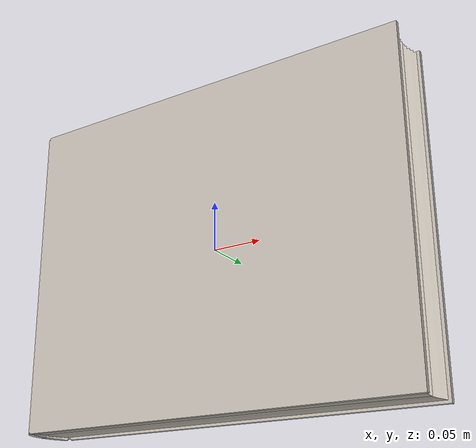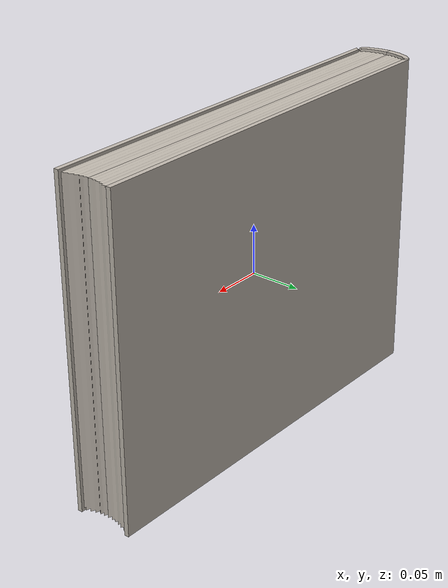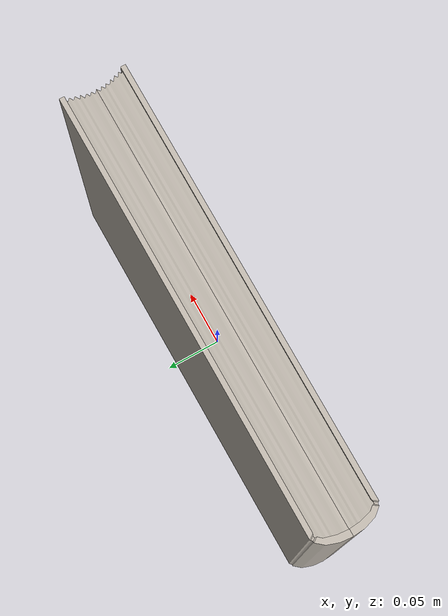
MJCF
<mujoco model="Book_1">
  <compiler angle="radian" />
  <default>
    <default class="/">
      <default class="__VISUAL_MJT__">
        <geom contype="0" conaffinity="0" />
      </default>
      <default class="__STRUCTURAL_MJT__">
        <geom contype="8" conaffinity="15" group="4" friction="0.9 0.9 0.001" solref="0.025" solimp="0.998 0.998" />
      </default>
      <default class="__DYNAMIC_MJT__">
        <geom conaffinity="15" group="4" friction="0.9 0.9 0.001" solref="0.025" solimp="0.998 0.998" />
      </default>
    </default>
  </default>
  <asset>
    <texture type="2d" name="Book_Pages_1_Mat" file="assets/Book_Pages_AlbedoTransparency.png" />
    <texture type="2d" name="Book_Text_Mat" file="assets/Book_Text_AlbedoTransparency.png" />
    <texture type="2d" name="Book_Cover_Mat" file="assets/Book_Cover_AlbedoTransparency.png" />
    <material name="material_Book_Pages_1_Mat" class="/" texture="Book_Pages_1_Mat" />
    <material name="material_Book_Text_Mat" class="/" texture="Book_Text_Mat" />
    <material name="material_Book_Cover_Mat" class="/" texture="Book_Cover_Mat" />
    <mesh name="Book_1_book_1_0" class="/" content_type="model/obj" file="assets/Book_1_book_1/Book_1_book_1_0.obj" />
    <mesh name="Book_1_book_1_1" class="/" content_type="model/obj" file="assets/Book_1_book_1/Book_1_book_1_1.obj" />
    <mesh name="Book_1_book_1_2" class="/" content_type="model/obj" file="assets/Book_1_book_1/Book_1_book_1_2.obj" />
    <mesh name="Book_1_book_front_1_0" class="/" content_type="model/obj" file="assets/Book_1_book_front_1/Book_1_book_front_1_0.obj" />
    <mesh name="Book_1_book_front_1_1" class="/" content_type="model/obj" file="assets/Book_1_book_front_1/Book_1_book_front_1_1.obj" />
    <mesh name="Book_1_book_front_1_2" class="/" content_type="model/obj" file="assets/Book_1_book_front_1/Book_1_book_front_1_2.obj" />
  </asset>
  <worldbody>
    <body name="Book_1">
      <joint name="Book_1_free" class="/" type="free" limited="false" actuatorfrclimited="false" damping="0.1" />
      <body name="Book_1_book_1" pos="-0.00157 -0.03107 0">
        <geom name="Book_1_book_1_0" class="__VISUAL_MJT__" type="mesh" material="material_Book_Pages_1_Mat" mesh="Book_1_book_1_0" mass="0"/>
        <geom name="Book_1_book_1_1" class="__VISUAL_MJT__" type="mesh" material="material_Book_Text_Mat" mesh="Book_1_book_1_1" mass="0"/>
        <geom name="Book_1_book_1_2" class="__VISUAL_MJT__" type="mesh" material="material_Book_Cover_Mat" mesh="Book_1_book_1_2" mass="0"/>
        <geom name="Book_1_book_1_PrimitiveCollider_0" class="__DYNAMIC_MJT__" size="0.210994 0.0162689 0.164428" pos="-0.00344684 0.0168215 -2.46537e-09" quat="0 -3.57628e-07 0 1" type="box" rgba="0 1 0 1" density="54.093"/>
        <geom name="Book_1_book_1_PrimitiveCollider_1" class="__DYNAMIC_MJT__" size="0.0876539 0.00816853 0.159474" pos="-0.105639 0.0456039 -7.55592e-08" quat="0 -3.57628e-07 0 1" type="box" rgba="0 1 0 1" density="54.093"/>
        <geom name="Book_1_book_1_PrimitiveCollider_2" class="__DYNAMIC_MJT__" size="0.0544618 0.0119457 0.159486" pos="-0.115279 0.0493811 -8.24543e-08" quat="0 -3.57628e-07 0 1" type="box" rgba="0 1 0 1" density="54.093"/>
        <geom name="Book_1_book_1_PrimitiveCollider_3" class="__DYNAMIC_MJT__" size="0.1116 0.00484933 0.159549" pos="-0.0898837 0.0422847 -6.42898e-08" quat="0 -3.57628e-07 0 1" type="box" rgba="0 1 0 1" density="54.093"/>
        <geom name="Book_1_book_1_PrimitiveCollider_4" class="__DYNAMIC_MJT__" size="0.205719 0.00216228 0.15951" pos="-0.00494718 0.0352947 -3.5385e-09" quat="0 -3.57628e-07 0 1" type="box" rgba="0 1 0 1" density="54.093"/>
      </body>
      <body name="Book_1_book_front_1" pos="-0.21427 -4.76897e-05 0">
        <joint name="Book_1_book_front_1_joint_0" class="/" pos="0 0 0" axis="0 0 1" range="0 3.14159" damping="0.1" frictionloss="0.1" />
        <geom name="Book_1_book_front_1_0" class="__VISUAL_MJT__" type="mesh" material="material_Book_Text_Mat" mesh="Book_1_book_front_1_0" mass="0"/>
        <geom name="Book_1_book_front_1_1" class="__VISUAL_MJT__" type="mesh" material="material_Book_Cover_Mat" mesh="Book_1_book_front_1_1" mass="0"/>
        <geom name="Book_1_book_front_1_2" class="__VISUAL_MJT__" type="mesh" material="material_Book_Pages_1_Mat" mesh="Book_1_book_front_1_2" mass="0"/>
        <geom name="Book_1_book_front_1_PrimitiveCollider_0" class="__DYNAMIC_MJT__" size="0.210994 0.0163493 0.164428" pos="0.212653 0.0142242 2.47165e-07" quat="0 5.81145e-07 0 -1" type="box" rgba="0 1 0 1" density="64.9116"/>
        <geom name="Book_1_book_front_1_PrimitiveCollider_1" class="__DYNAMIC_MJT__" size="0.0885317 0.00818408 0.159474" pos="0.108183 -0.0140389 1.2574e-07" quat="0 5.81145e-07 0 -1" type="box" rgba="0 1 0 1" density="64.9116"/>
        <geom name="Book_1_book_front_1_PrimitiveCollider_2" class="__DYNAMIC_MJT__" size="0.056457 0.0119743 0.159486" pos="0.100821 -0.0178817 1.17183e-07" quat="0 5.81145e-07 0 -1" type="box" rgba="0 1 0 1" density="64.9116"/>
        <geom name="Book_1_book_front_1_PrimitiveCollider_3" class="__DYNAMIC_MJT__" size="0.112816 0.00525387 0.159549" pos="0.123402 -0.0111107 1.43429e-07" quat="0 5.81145e-07 0 -1" type="box" rgba="0 1 0 1" density="64.9116"/>
        <geom name="Book_1_book_front_1_PrimitiveCollider_4" class="__DYNAMIC_MJT__" size="0.206261 0.00197345 0.15951" pos="0.210034 -0.00399417 2.44121e-07" quat="0 5.81145e-07 0 -1" type="box" rgba="0 1 0 1" density="64.9116"/>
      </body>
    </body>
  </worldbody>
  <keyframe>
    <key name="Lying down" qpos="0 0 0.032 0.707107 0.707107 0 0 0" />
  </keyframe>
  <contact>
    <exclude name="//unnamed_contact_0" body1="Book_1_book_1" body2="Book_1_book_front_1" />
    <exclude body1="Book_1_book_1" body2="Book_1_book_front_1" />
  </contact>
</mujoco>
